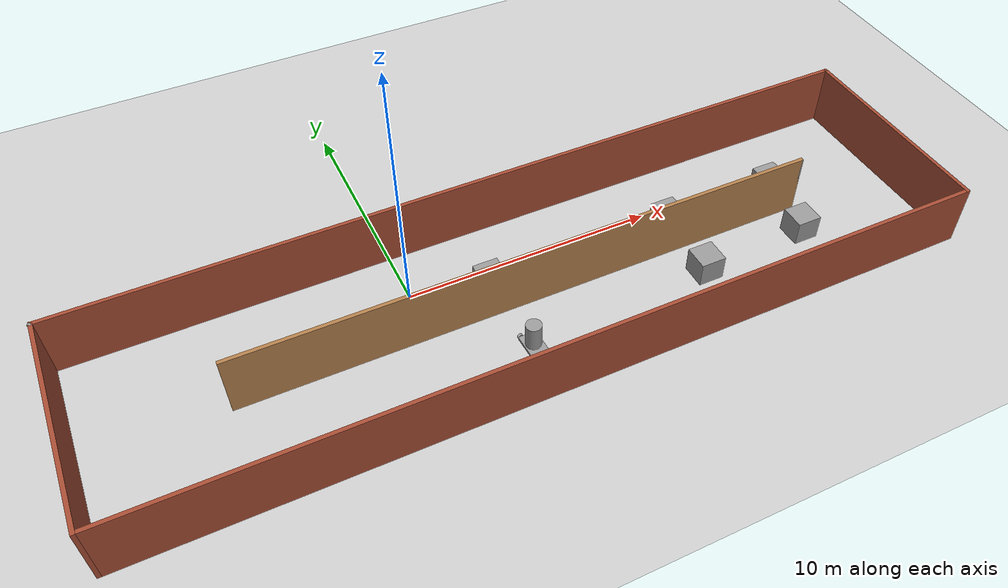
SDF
<sdf version="1.6">
 <world name="default">
  <model name="mybuilding">
   <pose>3.88334 -2.07308 0 0 -0 0</pose>
   <link name="Wall_13">
    <collision name="Wall_13_Collision">
     <geometry><box><size>32.75 0.15 2.5</size></box></geometry>
     <pose>0 0 1.25 0 -0 0</pose>
    </collision>
    <visual name="Wall_13_Visual">
     <pose>0 0 1.25 0 -0 0</pose>
     <geometry><box><size>32.75 0.15 2.5</size></box></geometry>
     <material>
      <script><uri>file://media/materials/scripts/gazebo.material</uri><name>Gazebo/Bricks</name></script>
      <ambient>0.435294 0.796078 0.67451 1</ambient>
     </material>
     <meta><layer>0</layer></meta>
    </visual>
    <pose>0.013664 4.28634 0 0 -0 0</pose>
   </link>
   <link name="Wall_14">
    <collision name="Wall_14_Collision">
     <geometry><box><size>8.75 0.15 2.5</size></box></geometry>
     <pose>0 0 1.25 0 -0 0</pose>
    </collision>
    <visual name="Wall_14_Visual">
     <pose>0 0 1.25 0 -0 0</pose>
     <geometry><box><size>8.75 0.15 2.5</size></box></geometry>
     <material>
      <script><uri>file://media/materials/scripts/gazebo.material</uri><name>Gazebo/Bricks</name></script>
      <ambient>1 1 1 1</ambient>
     </material>
     <meta><layer>0</layer></meta>
    </visual>
    <pose>16.3137 -0.013664 0 0 0 -1.5708</pose>
   </link>
   <link name="Wall_15">
    <collision name="Wall_15_Collision">
     <geometry><box><size>32.75 0.15 2.5</size></box></geometry>
     <pose>0 0 1.25 0 -0 0</pose>
    </collision>
    <visual name="Wall_15_Visual">
     <pose>0 0 1.25 0 -0 0</pose>
     <geometry><box><size>32.75 0.15 2.5</size></box></geometry>
     <material>
      <script><uri>file://media/materials/scripts/gazebo.material</uri><name>Gazebo/Bricks</name></script>
      <ambient>0.435294 0.796078 0.67451 1</ambient>
     </material>
     <meta><layer>0</layer></meta>
    </visual>
    <pose>0.013664 -4.31366 0 0 -0 3.14159</pose>
   </link>
   <link name="Wall_16">
    <collision name="Wall_16_Collision">
     <geometry><box><size>8.75 0.15 2.5</size></box></geometry>
     <pose>0 0 1.25 0 -0 0</pose>
    </collision>
    <visual name="Wall_16_Visual">
     <pose>0 0 1.25 0 -0 0</pose>
     <geometry><box><size>8.75 0.15 2.5</size></box></geometry>
     <material>
      <script><uri>file://media/materials/scripts/gazebo.material</uri><name>Gazebo/Bricks</name></script>
      <ambient>0.435294 0.796078 0.67451 1</ambient>
     </material>
     <meta><layer>0</layer></meta>
    </visual>
    <pose>-16.2863 -0.013664 0 0 -0 1.5708</pose>
   </link>
   <link name="Wall_17">
    <collision name="Wall_17_Collision">
     <geometry><box><size>0.15 0.15 2.5</size></box></geometry>
     <pose>0 0 1.25 0 -0 0</pose>
    </collision>
    <visual name="Wall_17_Visual">
     <pose>0 0 1.25 0 -0 0</pose>
     <geometry><box><size>0.15 0.15 2.5</size></box></geometry>
     <material>
      <script><uri>file://media/materials/scripts/gazebo.material</uri><name>Gazebo/Grey</name></script>
      <ambient>1 1 1 1</ambient>
     </material>
     <meta><layer>0</layer></meta>
    </visual>
    <pose>-16.2863 4.28634 0 0 -0 1.05165</pose>
   </link>
   <link name="Wall_19">
    <collision name="Wall_19_Collision">
     <geometry><box><size>23 0.15 2.5</size></box></geometry>
     <pose>0 0 1.25 0 -0 0</pose>
    </collision>
    <visual name="Wall_19_Visual">
     <pose>0 0 1.25 0 -0 0</pose>
     <geometry><box><size>23 0.15 2.5</size></box></geometry>
     <material>
      <script><uri>file://media/materials/scripts/gazebo.material</uri><name>Gazebo/Wood</name></script>
      <ambient>0.760784 0.662745 0.627451 1</ambient>
     </material>
     <meta><layer>0</layer></meta>
    </visual>
    <pose>0.343051 -0.085349 0 0 -0 0</pose>
   </link>
   <link name="Wall_20">
    <collision name="Wall_20_Collision">
     <geometry><box><size>0.15 0.15 2.5</size></box></geometry>
     <pose>0 0 1.25 0 -0 0</pose>
    </collision>
    <visual name="Wall_20_Visual">
     <pose>0 0 1.25 0 -0 0</pose>
     <geometry><box><size>0.15 0.15 2.5</size></box></geometry>
     <material>
      <script><uri>file://media/materials/scripts/gazebo.material</uri><name>Gazebo/Grey</name></script>
      <ambient>1 1 1 1</ambient>
     </material>
     <meta><layer>0</layer></meta>
    </visual>
    <pose>11.7681 -0.085349 0 0 -0 0</pose>
   </link>
   <static>1</static>
  </model>
  <model name="ground_plane">
   <static>1</static>
   <link name="link">
    <collision name="collision">
     <geometry><plane><normal>0 0 1</normal><size>100 100</size></plane></geometry>
     <surface>
      <contact><collide_bitmask>65535</collide_bitmask></contact>
      <friction><ode><mu>100</mu><mu2>50</mu2></ode></friction>
     </surface>
    </collision>
    <visual name="visual">
     <cast_shadows>0</cast_shadows>
     <geometry><plane><normal>0 0 1</normal><size>100 100</size></plane></geometry>
     <material>
      <script><uri>file://media/materials/scripts/gazebo.material</uri><name>Gazebo/Grey</name></script>
     </material>
    </visual>
   </link>
  </model>
  <model name="project_robot">
   <link name="link_2">
    <pose>0 0 0.1 0 -0 0</pose>
    <inertial>
     <mass>1</mass>
     <inertia>
      <ixx>0.166667</ixx>
      <ixy>0</ixy>
      <ixz>0</ixz>
      <iyy>0.166667</iyy>
      <iyz>0</iyz>
      <izz>0.166667</izz>
     </inertia>
    </inertial>
    <visual name="visual">
     <geometry><box><size>0.7 1 0.1</size></box></geometry>
     <material>
      <lighting>1</lighting>
      <script><uri>file://media/materials/scripts/gazebo.material</uri><name>Gazebo/Grey</name></script>
      <shader type="pixel"><normal_map>__default__</normal_map></shader>
      <ambient>0.3 0.3 0.3 1</ambient>
      <diffuse>0.7 0.7 0.7 1</diffuse>
      <specular>0.01 0.01 0.01 1</specular>
      <emissive>0 0 0 1</emissive>
     </material>
    </visual>
    <collision name="collision">
     <geometry><box><size>0.7 1 0.1</size></box></geometry>
     <surface>
      <friction>
       <ode><mu>1</mu><mu2>1</mu2><fdir1>0 0 0</fdir1><slip1>0</slip1><slip2>0</slip2></ode>
       <torsional>
        <coefficient>1</coefficient>
        <patch_radius>0</patch_radius>
        <surface_radius>0</surface_radius>
        <use_patch_radius>1</use_patch_radius>
        <ode><slip>0</slip></ode>
       </torsional>
      </friction>
      <bounce><restitution_coefficient>0</restitution_coefficient><threshold>1e+06</threshold></bounce>
      <contact>
       <collide_without_contact>0</collide_without_contact>
       <collide_without_contact_bitmask>1</collide_without_contact_bitmask>
       <collide_bitmask>1</collide_bitmask>
       <ode>
        <soft_cfm>0</soft_cfm>
        <soft_erp>0.2</soft_erp>
        <kp>1e+13</kp>
        <kd>1</kd>
        <max_vel>0.01</max_vel>
        <min_depth>0</min_depth>
       </ode>
       <bullet>
        <split_impulse>1</split_impulse>
        <split_impulse_penetration_threshold>-0.01</split_impulse_penetration_threshold>
        <soft_cfm>0</soft_cfm>
        <soft_erp>0.2</soft_erp>
        <kp>1e+13</kp>
        <kd>1</kd>
       </bullet>
      </contact>
     </surface>
    </collision>
   </link>
   <link name="link_0">
    <pose>0 0 0.65 0 -0 0</pose>
    <inertial>
     <mass>1</mass>
     <inertia><ixx>0.145833</ixx><ixy>0</ixy><ixz>0</ixz><iyy>0.145833</iyy><iyz>0</iyz><izz>0.125</izz></inertia>
    </inertial>
    <visual name="visual">
     <geometry><cylinder><radius>0.3</radius><length>1</length></cylinder></geometry>
     <material>
      <lighting>1</lighting>
      <script><uri>file://media/materials/scripts/gazebo.material</uri><name>Gazebo/Grey</name></script>
      <shader type="pixel"><normal_map>__default__</normal_map></shader>
      <ambient>0.3 0.3 0.3 1</ambient>
      <diffuse>0.7 0.7 0.7 1</diffuse>
      <specular>0.01 0.01 0.01 1</specular>
      <emissive>0 0 0 1</emissive>
     </material>
    </visual>
    <collision name="collision">
     <geometry><cylinder><radius>0.3</radius><length>1</length></cylinder></geometry>
     <surface>
      <friction>
       <ode><mu>1</mu><mu2>1</mu2><fdir1>0 0 0</fdir1><slip1>0</slip1><slip2>0</slip2></ode>
       <torsional>
        <coefficient>1</coefficient>
        <patch_radius>0</patch_radius>
        <surface_radius>0</surface_radius>
        <use_patch_radius>1</use_patch_radius>
        <ode><slip>0</slip></ode>
       </torsional>
      </friction>
      <bounce><restitution_coefficient>0</restitution_coefficient><threshold>1e+06</threshold></bounce>
      <contact>
       <collide_without_contact>0</collide_without_contact>
       <collide_without_contact_bitmask>1</collide_without_contact_bitmask>
       <collide_bitmask>1</collide_bitmask>
       <ode>
        <soft_cfm>0</soft_cfm>
        <soft_erp>0.2</soft_erp>
        <kp>1e+13</kp>
        <kd>1</kd>
        <max_vel>0.01</max_vel>
        <min_depth>0</min_depth>
       </ode>
       <bullet>
        <split_impulse>1</split_impulse>
        <split_impulse_penetration_threshold>-0.01</split_impulse_penetration_threshold>
        <soft_cfm>0</soft_cfm>
        <soft_erp>0.2</soft_erp>
        <kp>1e+13</kp>
        <kd>1</kd>
       </bullet>
      </contact>
     </surface>
    </collision>
   </link>
   <link name="link_3">
    <pose>-0.25 -0.550019 0.1 1.5707 -0 0</pose>
    <inertial>
     <mass>1</mass>
     <inertia><ixx>0.145833</ixx><ixy>0</ixy><ixz>0</ixz><iyy>0.145833</iyy><iyz>0</iyz><izz>0.125</izz></inertia>
    </inertial>
    <visual name="visual">
     <geometry><cylinder><radius>0.1</radius><length>0.1</length></cylinder></geometry>
     <material>
      <lighting>1</lighting>
      <script><uri>file://media/materials/scripts/gazebo.material</uri><name>Gazebo/Grey</name></script>
      <shader type="pixel"><normal_map>__default__</normal_map></shader>
      <ambient>0.3 0.3 0.3 1</ambient>
      <diffuse>0.7 0.7 0.7 1</diffuse>
      <specular>0.01 0.01 0.01 1</specular>
      <emissive>0 0 0 1</emissive>
     </material>
    </visual>
    <collision name="collision">
     <geometry><cylinder><radius>0.1</radius><length>0.1</length></cylinder></geometry>
     <surface>
      <friction>
       <ode><mu>1</mu><mu2>1</mu2><fdir1>0 0 0</fdir1><slip1>0</slip1><slip2>0</slip2></ode>
       <torsional>
        <coefficient>1</coefficient>
        <patch_radius>0</patch_radius>
        <surface_radius>0</surface_radius>
        <use_patch_radius>1</use_patch_radius>
        <ode><slip>0</slip></ode>
       </torsional>
      </friction>
      <bounce><restitution_coefficient>0</restitution_coefficient><threshold>1e+06</threshold></bounce>
      <contact>
       <collide_without_contact>0</collide_without_contact>
       <collide_without_contact_bitmask>1</collide_without_contact_bitmask>
       <collide_bitmask>1</collide_bitmask>
       <ode>
        <soft_cfm>0</soft_cfm>
        <soft_erp>0.2</soft_erp>
        <kp>1e+13</kp>
        <kd>1</kd>
        <max_vel>0.01</max_vel>
        <min_depth>0</min_depth>
       </ode>
       <bullet>
        <split_impulse>1</split_impulse>
        <split_impulse_penetration_threshold>-0.01</split_impulse_penetration_threshold>
        <soft_cfm>0</soft_cfm>
        <soft_erp>0.2</soft_erp>
        <kp>1e+13</kp>
        <kd>1</kd>
       </bullet>
      </contact>
     </surface>
    </collision>
   </link>
   <link name="link_3_clone">
    <pose>-0.25 0.55002 0.1 1.5707 -0 0</pose>
    <inertial>
     <mass>1</mass>
     <inertia><ixx>0.145833</ixx><ixy>0</ixy><ixz>0</ixz><iyy>0.145833</iyy><iyz>0</iyz><izz>0.125</izz></inertia>
    </inertial>
    <visual name="visual">
     <geometry><cylinder><radius>0.1</radius><length>0.1</length></cylinder></geometry>
     <material>
      <lighting>1</lighting>
      <script><uri>file://media/materials/scripts/gazebo.material</uri><name>Gazebo/Grey</name></script>
      <shader type="pixel"><normal_map>__default__</normal_map></shader>
      <ambient>0.3 0.3 0.3 1</ambient>
      <diffuse>0.7 0.7 0.7 1</diffuse>
      <specular>0.01 0.01 0.01 1</specular>
      <emissive>0 0 0 1</emissive>
     </material>
    </visual>
    <collision name="collision">
     <geometry><cylinder><radius>0.1</radius><length>0.1</length></cylinder></geometry>
     <surface>
      <friction>
       <ode><mu>1</mu><mu2>1</mu2><fdir1>0 0 0</fdir1><slip1>0</slip1><slip2>0</slip2></ode>
       <torsional>
        <coefficient>1</coefficient>
        <patch_radius>0</patch_radius>
        <surface_radius>0</surface_radius>
        <use_patch_radius>1</use_patch_radius>
        <ode><slip>0</slip></ode>
       </torsional>
      </friction>
      <bounce><restitution_coefficient>0</restitution_coefficient><threshold>1e+06</threshold></bounce>
      <contact>
       <collide_without_contact>0</collide_without_contact>
       <collide_without_contact_bitmask>1</collide_without_contact_bitmask>
       <collide_bitmask>1</collide_bitmask>
       <ode>
        <soft_cfm>0</soft_cfm>
        <soft_erp>0.2</soft_erp>
        <kp>1e+13</kp>
        <kd>1</kd>
        <max_vel>0.01</max_vel>
        <min_depth>0</min_depth>
       </ode>
       <bullet>
        <split_impulse>1</split_impulse>
        <split_impulse_penetration_threshold>-0.01</split_impulse_penetration_threshold>
        <soft_cfm>0</soft_cfm>
        <soft_erp>0.2</soft_erp>
        <kp>1e+13</kp>
        <kd>1</kd>
       </bullet>
      </contact>
     </surface>
    </collision>
   </link>
   <link name="link_3_clone_0">
    <pose>0.25 -0.55001 0.1 1.5707 -0 0</pose>
    <inertial>
     <mass>1</mass>
     <inertia><ixx>0.145833</ixx><ixy>0</ixy><ixz>0</ixz><iyy>0.145833</iyy><iyz>0</iyz><izz>0.125</izz></inertia>
    </inertial>
    <visual name="visual">
     <geometry><cylinder><radius>0.1</radius><length>0.1</length></cylinder></geometry>
     <material>
      <lighting>1</lighting>
      <script><uri>file://media/materials/scripts/gazebo.material</uri><name>Gazebo/Grey</name></script>
      <shader type="pixel"><normal_map>__default__</normal_map></shader>
      <ambient>0.3 0.3 0.3 1</ambient>
      <diffuse>0.7 0.7 0.7 1</diffuse>
      <specular>0.01 0.01 0.01 1</specular>
      <emissive>0 0 0 1</emissive>
     </material>
    </visual>
    <collision name="collision">
     <geometry><cylinder><radius>0.1</radius><length>0.1</length></cylinder></geometry>
     <surface>
      <friction>
       <ode><mu>1</mu><mu2>1</mu2><fdir1>0 0 0</fdir1><slip1>0</slip1><slip2>0</slip2></ode>
       <torsional>
        <coefficient>1</coefficient>
        <patch_radius>0</patch_radius>
        <surface_radius>0</surface_radius>
        <use_patch_radius>1</use_patch_radius>
        <ode><slip>0</slip></ode>
       </torsional>
      </friction>
      <bounce><restitution_coefficient>0</restitution_coefficient><threshold>1e+06</threshold></bounce>
      <contact>
       <collide_without_contact>0</collide_without_contact>
       <collide_without_contact_bitmask>1</collide_without_contact_bitmask>
       <collide_bitmask>1</collide_bitmask>
       <ode>
        <soft_cfm>0</soft_cfm>
        <soft_erp>0.2</soft_erp>
        <kp>1e+13</kp>
        <kd>1</kd>
        <max_vel>0.01</max_vel>
        <min_depth>0</min_depth>
       </ode>
       <bullet>
        <split_impulse>1</split_impulse>
        <split_impulse_penetration_threshold>-0.01</split_impulse_penetration_threshold>
        <soft_cfm>0</soft_cfm>
        <soft_erp>0.2</soft_erp>
        <kp>1e+13</kp>
        <kd>1</kd>
       </bullet>
      </contact>
     </surface>
    </collision>
   </link>
   <link name="link_3_clone_clone">
    <pose>0.25 0.55001 0.1 1.5707 -0 0</pose>
    <inertial>
     <mass>1</mass>
     <inertia><ixx>0.145833</ixx><ixy>0</ixy><ixz>0</ixz><iyy>0.145833</iyy><iyz>0</iyz><izz>0.125</izz></inertia>
    </inertial>
    <visual name="visual">
     <geometry><cylinder><radius>0.1</radius><length>0.1</length></cylinder></geometry>
     <material>
      <lighting>1</lighting>
      <script><uri>file://media/materials/scripts/gazebo.material</uri><name>Gazebo/Grey</name></script>
      <shader type="pixel"><normal_map>__default__</normal_map></shader>
      <ambient>0.3 0.3 0.3 1</ambient>
      <diffuse>0.7 0.7 0.7 1</diffuse>
      <specular>0.01 0.01 0.01 1</specular>
      <emissive>0 0 0 1</emissive>
     </material>
    </visual>
    <collision name="collision">
     <geometry><cylinder><radius>0.1</radius><length>0.1</length></cylinder></geometry>
     <surface>
      <friction>
       <ode><mu>1</mu><mu2>1</mu2><fdir1>0 0 0</fdir1><slip1>0</slip1><slip2>0</slip2></ode>
       <torsional>
        <coefficient>1</coefficient>
        <patch_radius>0</patch_radius>
        <surface_radius>0</surface_radius>
        <use_patch_radius>1</use_patch_radius>
        <ode><slip>0</slip></ode>
       </torsional>
      </friction>
      <bounce><restitution_coefficient>0</restitution_coefficient><threshold>1e+06</threshold></bounce>
      <contact>
       <collide_without_contact>0</collide_without_contact>
       <collide_without_contact_bitmask>1</collide_without_contact_bitmask>
       <collide_bitmask>1</collide_bitmask>
       <ode>
        <soft_cfm>0</soft_cfm>
        <soft_erp>0.2</soft_erp>
        <kp>1e+13</kp>
        <kd>1</kd>
        <max_vel>0.01</max_vel>
        <min_depth>0</min_depth>
       </ode>
       <bullet>
        <split_impulse>1</split_impulse>
        <split_impulse_penetration_threshold>-0.01</split_impulse_penetration_threshold>
        <soft_cfm>0</soft_cfm>
        <soft_erp>0.2</soft_erp>
        <kp>1e+13</kp>
        <kd>1</kd>
       </bullet>
      </contact>
     </surface>
    </collision>
   </link>
   <joint name="link_2_JOINT_0_0" type="revolute">
    <parent>link_2</parent>
    <child>link_3_clone_0</child>
    <axis>
     <xyz>0 0 1</xyz>
     <use_parent_model_frame>0</use_parent_model_frame>
     <limit>
      <lower>-1.79769e+308</lower>
      <upper>1.79769e+308</upper>
      <effort>-1</effort>
      <velocity>-1</velocity>
     </limit>
     <dynamics>
      <spring_reference>0</spring_reference>
      <spring_stiffness>0</spring_stiffness>
      <damping>0</damping>
     </dynamics>
    </axis>
    <physics>
     <ode><limit><cfm>0</cfm><erp>0.2</erp></limit><suspension><cfm>0</cfm><erp>0.2</erp></suspension></ode>
    </physics>
   </joint>
   <joint name="link_2_JOINT_0" type="revolute">
    <parent>link_2</parent>
    <child>link_3</child>
    <axis>
     <xyz>0 0 1</xyz>
     <use_parent_model_frame>0</use_parent_model_frame>
     <limit>
      <lower>-1.79769e+308</lower>
      <upper>1.79769e+308</upper>
      <effort>-1</effort>
      <velocity>-1</velocity>
     </limit>
     <dynamics>
      <spring_reference>0</spring_reference>
      <spring_stiffness>0</spring_stiffness>
      <damping>0</damping>
      <friction>0</friction>
     </dynamics>
    </axis>
    <physics>
     <ode><limit><cfm>0</cfm><erp>0.2</erp></limit><suspension><cfm>0</cfm><erp>0.2</erp></suspension></ode>
    </physics>
   </joint>
   <joint name="link_2_JOINT_1_0" type="revolute">
    <parent>link_2</parent>
    <child>link_3_clone_clone</child>
    <axis>
     <xyz>0 0 1</xyz>
     <use_parent_model_frame>0</use_parent_model_frame>
     <limit>
      <lower>-1.79769e+308</lower>
      <upper>1.79769e+308</upper>
      <effort>-1</effort>
      <velocity>-1</velocity>
     </limit>
     <dynamics>
      <spring_reference>0</spring_reference>
      <spring_stiffness>0</spring_stiffness>
      <damping>0</damping>
     </dynamics>
    </axis>
    <physics>
     <ode><limit><cfm>0</cfm><erp>0.2</erp></limit><suspension><cfm>0</cfm><erp>0.2</erp></suspension></ode>
    </physics>
   </joint>
   <joint name="link_2_JOINT_1" type="revolute">
    <parent>link_2</parent>
    <child>link_3_clone</child>
    <axis>
     <xyz>0 0 1</xyz>
     <use_parent_model_frame>0</use_parent_model_frame>
     <limit>
      <lower>-1.79769e+308</lower>
      <upper>1.79769e+308</upper>
      <effort>-1</effort>
      <velocity>-1</velocity>
     </limit>
     <dynamics>
      <spring_reference>0</spring_reference>
      <spring_stiffness>0</spring_stiffness>
      <damping>0</damping>
      <friction>0</friction>
     </dynamics>
    </axis>
    <physics>
     <ode><limit><cfm>0</cfm><erp>0.2</erp></limit><suspension><cfm>0</cfm><erp>0.2</erp></suspension></ode>
    </physics>
   </joint>
   <joint name="link_2_JOINT_2" type="fixed">
    <parent>link_2</parent>
    <child>link_0</child>
    <pose>0 0 0 -0.01 0 0</pose>
    <physics>
     <ode><limit><cfm>0</cfm><erp>0.2</erp></limit><suspension><cfm>0</cfm><erp>0.2</erp></suspension></ode>
    </physics>
   </joint>
   <static>0</static>
   <pose>3.09414 -4.15074 5e-06 -4e-06 -8e-06 0.042115</pose>
  </model>
  <model name="my_ball">
   <link name="link_0">
    <pose>0 0 0.1 0 -0 0</pose>
    <inertial>
     <mass>1</mass>
     <inertia><ixx>0.1</ixx><ixy>0</ixy><ixz>0</ixz><iyy>0.1</iyy><iyz>0</iyz><izz>0.1</izz></inertia>
    </inertial>
    <visual name="visual">
     <geometry><sphere><radius>0.1</radius></sphere></geometry>
     <material>
      <lighting>1</lighting>
      <script><uri>file://media/materials/scripts/gazebo.material</uri><name>Gazebo/Grey</name></script>
      <ambient>1 1 1 1</ambient>
      <diffuse>1 1 1 1</diffuse>
      <specular>1 1 1 1</specular>
      <emissive>1 1 1 1</emissive>
      <shader type="vertex"><normal_map>__default__</normal_map></shader>
     </material>
    </visual>
    <collision name="collision">
     <geometry><sphere><radius>0.1</radius></sphere></geometry>
     <surface>
      <friction>
       <ode><mu>1</mu><mu2>1</mu2><fdir1>0 0 0</fdir1><slip1>0</slip1><slip2>0</slip2></ode>
       <torsional>
        <coefficient>1</coefficient>
        <patch_radius>0</patch_radius>
        <surface_radius>0</surface_radius>
        <use_patch_radius>1</use_patch_radius>
        <ode><slip>0</slip></ode>
       </torsional>
      </friction>
      <bounce><restitution_coefficient>0</restitution_coefficient><threshold>1e+06</threshold></bounce>
      <contact>
       <collide_without_contact>0</collide_without_contact>
       <collide_without_contact_bitmask>1</collide_without_contact_bitmask>
       <collide_bitmask>1</collide_bitmask>
       <ode>
        <soft_cfm>0</soft_cfm>
        <soft_erp>0.2</soft_erp>
        <kp>1e+13</kp>
        <kd>1</kd>
        <max_vel>0.01</max_vel>
        <min_depth>0</min_depth>
       </ode>
       <bullet>
        <split_impulse>1</split_impulse>
        <split_impulse_penetration_threshold>-0.01</split_impulse_penetration_threshold>
        <soft_cfm>0</soft_cfm>
        <soft_erp>0.2</soft_erp>
        <kp>1e+13</kp>
        <kd>1</kd>
       </bullet>
      </contact>
     </surface>
    </collision>
   </link>
   <static>0</static>
   <pose>1.32892 -0.968381 0 0 -0 0</pose>
  </model>
  <model name="unit_box_0">
   <pose>10.5554 -0.942218 0.499995 -1e-05 0 0</pose>
   <link name="link">
    <inertial>
     <mass>1</mass>
     <inertia>
      <ixx>0.166667</ixx>
      <ixy>0</ixy>
      <ixz>0</ixz>
      <iyy>0.166667</iyy>
      <iyz>0</iyz>
      <izz>0.166667</izz>
     </inertia>
    </inertial>
    <collision name="collision"><geometry><box><size>1 1 1</size></box></geometry></collision>
    <visual name="visual">
     <geometry><box><size>1 1 1</size></box></geometry>
     <material>
      <script><name>Gazebo/Grey</name><uri>file://media/materials/scripts/gazebo.material</uri></script>
     </material>
    </visual>
   </link>
  </model>
  <model name="unit_box_1">
   <pose>15.3845 -0.936144 0.499995 0 -1e-05 0</pose>
   <link name="link">
    <inertial>
     <mass>1</mass>
     <inertia>
      <ixx>0.166667</ixx>
      <ixy>0</ixy>
      <ixz>0</ixz>
      <iyy>0.166667</iyy>
      <iyz>0</iyz>
      <izz>0.166667</izz>
     </inertia>
    </inertial>
    <collision name="collision"><geometry><box><size>1 1 1</size></box></geometry></collision>
    <visual name="visual">
     <geometry><box><size>1 1 1</size></box></geometry>
     <material>
      <script><name>Gazebo/Grey</name><uri>file://media/materials/scripts/gazebo.material</uri></script>
     </material>
    </visual>
   </link>
  </model>
  <model name="unit_box_2">
   <pose>10.5361 -3.74611 0.499995 -1e-05 0 0</pose>
   <link name="link">
    <inertial>
     <mass>1</mass>
     <inertia>
      <ixx>0.166667</ixx>
      <ixy>0</ixy>
      <ixz>0</ixz>
      <iyy>0.166667</iyy>
      <iyz>0</iyz>
      <izz>0.166667</izz>
     </inertia>
    </inertial>
    <collision name="collision"><geometry><box><size>1 1 1</size></box></geometry></collision>
    <visual name="visual">
     <geometry><box><size>1 1 1</size></box></geometry>
     <material>
      <script><name>Gazebo/Grey</name><uri>file://media/materials/scripts/gazebo.material</uri></script>
     </material>
    </visual>
   </link>
  </model>
  <model name="unit_box_3">
   <pose>15.0877 -3.5114 0.499995 0 1e-05 0</pose>
   <link name="link">
    <inertial>
     <mass>1</mass>
     <inertia>
      <ixx>0.166667</ixx>
      <ixy>0</ixy>
      <ixz>0</ixz>
      <iyy>0.166667</iyy>
      <iyz>0</iyz>
      <izz>0.166667</izz>
     </inertia>
    </inertial>
    <collision name="collision"><geometry><box><size>1 1 1</size></box></geometry></collision>
    <visual name="visual">
     <geometry><box><size>1 1 1</size></box></geometry>
     <material>
      <script><name>Gazebo/Grey</name><uri>file://media/materials/scripts/gazebo.material</uri></script>
     </material>
    </visual>
   </link>
  </model>
  <model name="unit_box_4">
   <pose>2.87872 -0.969337 0.5 0 -0 0</pose>
   <link name="link">
    <inertial>
     <mass>1</mass>
     <inertia>
      <ixx>0.166667</ixx>
      <ixy>0</ixy>
      <ixz>0</ixz>
      <iyy>0.166667</iyy>
      <iyz>0</iyz>
      <izz>0.166667</izz>
     </inertia>
    </inertial>
    <collision name="collision"><geometry><box><size>1 1 1</size></box></geometry></collision>
    <visual name="visual">
     <geometry><box><size>1 1 1</size></box></geometry>
     <material>
      <script><name>Gazebo/Grey</name><uri>file://media/materials/scripts/gazebo.material</uri></script>
     </material>
    </visual>
   </link>
  </model>
 </world>
</sdf>
